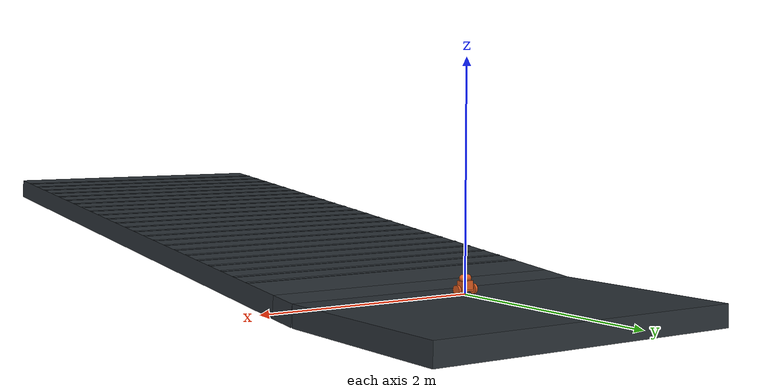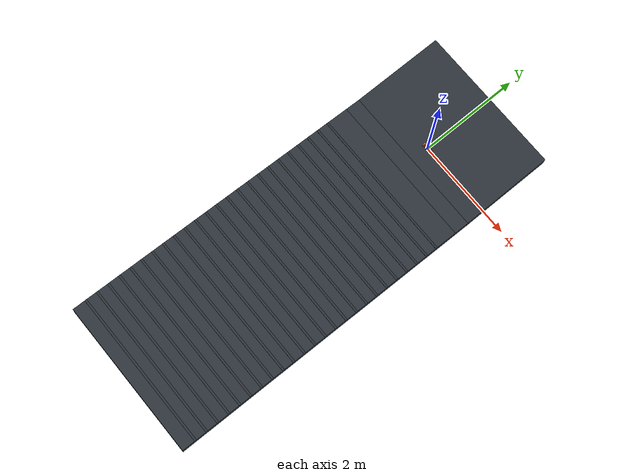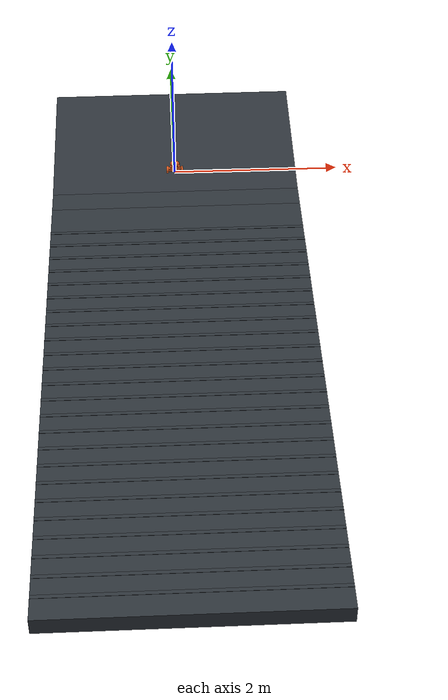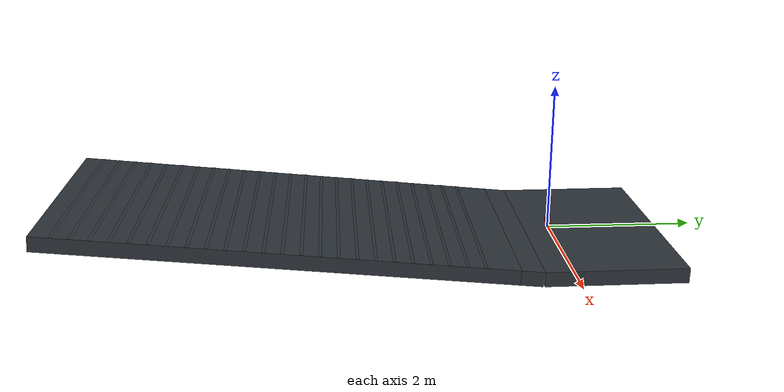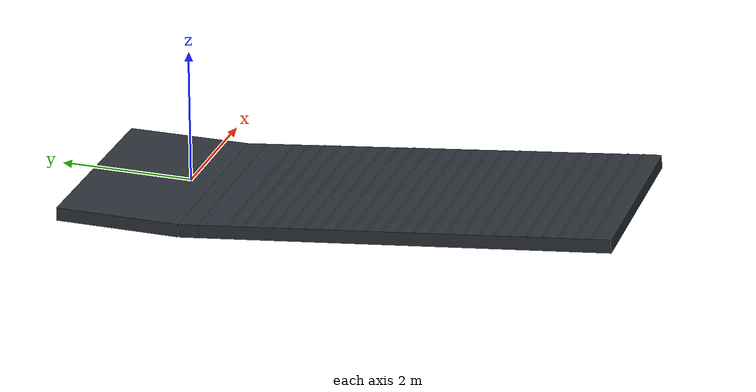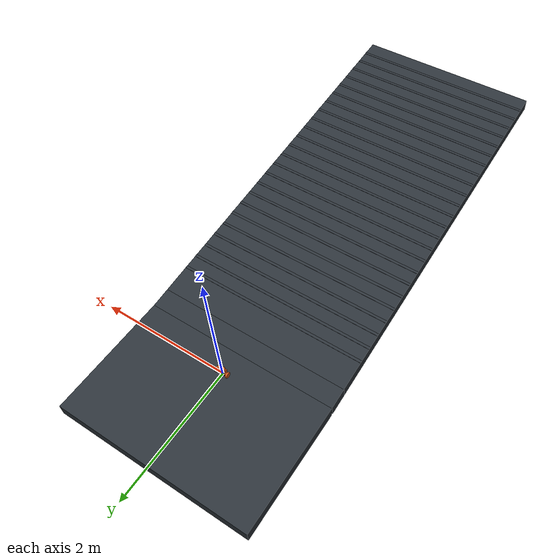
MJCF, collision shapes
<mujoco model="Stage4B rbase_ep_056_test_p06p0">
  <compiler angle="radian" meshdir="../../../../assets/upstream_local" />
  <option timestep="0.001" integrator="implicitfast" gravity="0 0 -9.81" />
  <statistic center="0 0 0.05" extent="0.28" />
  <default>
    <default class="visual">
      <geom contype="0" conaffinity="0" group="2" />
    </default>
    <default class="collision">
      <geom group="3" rgba="0.85 0.35 0.12 0.25" solref="0.005 1" solimp="0.9 0.95 0.001" />
    </default>
  </default>
  <asset>
    <texture name="ground_tex" type="2d" builtin="checker" rgb1="0.22 0.25 0.28" rgb2="0.12 0.14 0.16" width="256" height="256" />
    <material name="ground_mat" texture="ground_tex" texrepeat="4 4" reflectance="0.15" />
    <mesh name="main_frame_mesh" file="main_frame.stl" scale="0.001 0.001 0.001" />
    <mesh name="wheel_base_mesh" file="wheel_base.stl" scale="0.001 0.001 0.001" />
    <mesh name="cover_mesh" file="cover.stl" scale="0.001 0.001 0.001" />
    <mesh name="motor_left_mesh" file="motor_left.stl" scale="0.001 0.001 0.001" />
    <mesh name="motor_right_mesh" file="motor_right.stl" scale="0.001 0.001 0.001" />
    <mesh name="mc33926_mesh" file="mc33926.stl" scale="0.001 0.001 0.001" />
    <mesh name="wheel_mesh" file="wheel.stl" scale="0.001 0.001 0.001" />
    <mesh name="adapter_left_mesh" file="adapter_left.stl" scale="0.001 0.001 0.001" />
    <mesh name="adapter_right_mesh" file="adapter_right.stl" scale="0.001 0.001 0.001" />
  </asset>
  <worldbody>
    <light pos="0 -0.5 0.8" dir="0 0.6 -1" diffuse="0.8 0.8 0.8" />
    <geom name="terrain_flat" type="box" pos="0 0.575 -0.1" size="1.5 0.925 0.1" material="ground_mat" friction="0.45 0.005 0.0001" condim="3" />
    <geom name="terrain_transition" type="box" pos="0 -0.509631130632 -0.0837729200467" euler="-0.10471975512 0 0" size="1.5 0.15 0.1" material="ground_mat" friction="0.45 0.005 0.0001" condim="3" />
    <geom name="terrain_constant_grade" type="box" pos="0 -3.64237510104 0.245491739246" euler="-0.10471975512 0 0" size="1.5 3 0.1" material="ground_mat" friction="0.45 0.005 0.0001" condim="3" />
    <geom name="terrain_rough_00" type="box" pos="0 -1.09570849672 0.0801367607676" euler="-0.10471975512 0 0" size="1.5 0.02 0.00175" material="ground_mat" friction="0.45 0.005 0.0001" condim="3" />
    <geom name="terrain_rough_01" type="box" pos="0 -1.32444853265 0.104178307319" euler="-0.10471975512 0 0" size="1.5 0.02 0.00175" material="ground_mat" friction="0.45 0.005 0.0001" condim="3" />
    <geom name="terrain_rough_02" type="box" pos="0 -1.55318856858 0.128219853871" euler="-0.10471975512 0 0" size="1.5 0.02 0.00175" material="ground_mat" friction="0.45 0.005 0.0001" condim="3" />
    <geom name="terrain_rough_03" type="box" pos="0 -1.78192860452 0.152261400422" euler="-0.10471975512 0 0" size="1.5 0.02 0.00175" material="ground_mat" friction="0.45 0.005 0.0001" condim="3" />
    <geom name="terrain_rough_04" type="box" pos="0 -2.01066864045 0.176302946974" euler="-0.10471975512 0 0" size="1.5 0.02 0.00175" material="ground_mat" friction="0.45 0.005 0.0001" condim="3" />
    <geom name="terrain_rough_05" type="box" pos="0 -2.23940867639 0.200344493525" euler="-0.10471975512 0 0" size="1.5 0.02 0.00175" material="ground_mat" friction="0.45 0.005 0.0001" condim="3" />
    <geom name="terrain_rough_06" type="box" pos="0 -2.46814871232 0.224386040077" euler="-0.10471975512 0 0" size="1.5 0.02 0.00175" material="ground_mat" friction="0.45 0.005 0.0001" condim="3" />
    <geom name="terrain_rough_07" type="box" pos="0 -2.69688874826 0.248427586629" euler="-0.10471975512 0 0" size="1.5 0.02 0.00175" material="ground_mat" friction="0.45 0.005 0.0001" condim="3" />
    <geom name="terrain_rough_08" type="box" pos="0 -2.92562878419 0.27246913318" euler="-0.10471975512 0 0" size="1.5 0.02 0.00175" material="ground_mat" friction="0.45 0.005 0.0001" condim="3" />
    <geom name="terrain_rough_09" type="box" pos="0 -3.15436882013 0.296510679732" euler="-0.10471975512 0 0" size="1.5 0.02 0.00175" material="ground_mat" friction="0.45 0.005 0.0001" condim="3" />
    <geom name="terrain_rough_10" type="box" pos="0 -3.38310885606 0.320552226283" euler="-0.10471975512 0 0" size="1.5 0.02 0.00175" material="ground_mat" friction="0.45 0.005 0.0001" condim="3" />
    <geom name="terrain_rough_11" type="box" pos="0 -3.611848892 0.344593772835" euler="-0.10471975512 0 0" size="1.5 0.02 0.00175" material="ground_mat" friction="0.45 0.005 0.0001" condim="3" />
    <geom name="terrain_rough_12" type="box" pos="0 -3.84058892793 0.368635319386" euler="-0.10471975512 0 0" size="1.5 0.02 0.00175" material="ground_mat" friction="0.45 0.005 0.0001" condim="3" />
    <geom name="terrain_rough_13" type="box" pos="0 -4.06932896387 0.392676865938" euler="-0.10471975512 0 0" size="1.5 0.02 0.00175" material="ground_mat" friction="0.45 0.005 0.0001" condim="3" />
    <geom name="terrain_rough_14" type="box" pos="0 -4.2980689998 0.416718412489" euler="-0.10471975512 0 0" size="1.5 0.02 0.00175" material="ground_mat" friction="0.45 0.005 0.0001" condim="3" />
    <geom name="terrain_rough_15" type="box" pos="0 -4.52680903574 0.440759959041" euler="-0.10471975512 0 0" size="1.5 0.02 0.00175" material="ground_mat" friction="0.45 0.005 0.0001" condim="3" />
    <geom name="terrain_rough_16" type="box" pos="0 -4.75554907167 0.464801505593" euler="-0.10471975512 0 0" size="1.5 0.02 0.00175" material="ground_mat" friction="0.45 0.005 0.0001" condim="3" />
    <geom name="terrain_rough_17" type="box" pos="0 -4.98428910761 0.488843052144" euler="-0.10471975512 0 0" size="1.5 0.02 0.00175" material="ground_mat" friction="0.45 0.005 0.0001" condim="3" />
    <geom name="terrain_rough_18" type="box" pos="0 -5.21302914354 0.512884598696" euler="-0.10471975512 0 0" size="1.5 0.02 0.00175" material="ground_mat" friction="0.45 0.005 0.0001" condim="3" />
    <geom name="terrain_rough_19" type="box" pos="0 -5.44176917947 0.536926145247" euler="-0.10471975512 0 0" size="1.5 0.02 0.00175" material="ground_mat" friction="0.45 0.005 0.0001" condim="3" />
    <geom name="terrain_rough_20" type="box" pos="0 -5.67050921541 0.560967691799" euler="-0.10471975512 0 0" size="1.5 0.02 0.00175" material="ground_mat" friction="0.45 0.005 0.0001" condim="3" />
    <geom name="terrain_rough_21" type="box" pos="0 -5.89924925134 0.58500923835" euler="-0.10471975512 0 0" size="1.5 0.02 0.00175" material="ground_mat" friction="0.45 0.005 0.0001" condim="3" />
    <geom name="terrain_rough_22" type="box" pos="0 -6.12798928728 0.609050784902" euler="-0.10471975512 0 0" size="1.5 0.02 0.00175" material="ground_mat" friction="0.45 0.005 0.0001" condim="3" />
    <geom name="terrain_rough_23" type="box" pos="0 -6.35672932321 0.633092331454" euler="-0.10471975512 0 0" size="1.5 0.02 0.00175" material="ground_mat" friction="0.45 0.005 0.0001" condim="3" />
    <body name="chassis" pos="0 0 0.043">
      <freejoint name="root" />
      <inertial pos="0.0001592717873 -0.001394466535 0.03368627387" mass="0.8173706489" fullinertia="0.0009508052638 0.001636345835 0.0009938057434 -1.163464906e-07 -4.840496598e-06 3.454944565e-05" />
      <geom name="main_frame_visual" class="visual" type="mesh" mesh="main_frame_mesh" rgba="0.12 0.42 0.72 1" />
      <geom name="wheel_base_visual" class="visual" type="mesh" mesh="wheel_base_mesh" rgba="0.95 0.50 0.10 1" />
      <geom name="cover_visual" class="visual" type="mesh" mesh="cover_mesh" rgba="0.18 0.72 0.32 0.72" />
      <geom name="motor_left_visual" class="visual" type="mesh" mesh="motor_left_mesh" rgba="0.45 0.47 0.50 1" />
      <geom name="motor_right_visual" class="visual" type="mesh" mesh="motor_right_mesh" rgba="0.45 0.47 0.50 1" />
      <geom name="mc33926_visual" class="visual" type="mesh" mesh="mc33926_mesh" rgba="0.08 0.36 0.18 1" />
      <geom name="battery_1_visual" class="visual" type="box" pos="0 -0.012 0.038" size="0.035 0.007 0.025" rgba="0.15 0.25 0.75 1" />
      <geom name="battery_2_visual" class="visual" type="box" pos="0 0.012 0.038" size="0.035 0.007 0.025" rgba="0.15 0.25 0.75 1" />
      <geom name="electronics_lump_visual" class="visual" type="box" pos="0 -0.024 0.067" size="0.035 0.006 0.0425" rgba="0.10 0.42 0.20 0.65" />
      <geom name="wheel_base_collision" class="collision" type="box" pos="0 0.0005 0.0042" size="0.074 0.0201 0.0198" />
      <geom name="lower_chassis_collision" class="collision" type="box" pos="0.001 -0.0015 0.038" size="0.0595 0.0325 0.038" />
      <geom name="upper_chassis_collision" class="collision" type="capsule" fromto="-0.024 -0.0015 0.096 0.026 -0.0015 0.096" size="0.033" />
      <site name="imu_site" type="box" pos="0 0 0.020" quat="1 0 0 0" size="0.004 0.003 0.001" rgba="1 0.15 0.05 1" />
      <body name="left_wheel" pos="-0.0885 0 0">
        <joint name="left_wheel_hinge" type="hinge" axis="1 0 0" damping="0.002" frictionloss="0.002" />
        <inertial pos="0.001407549168 -2.310217342e-08 4.024972882e-05" mass="0.1051" fullinertia="8.559060347e-05 4.760138372e-05 4.763051958e-05 2.677568832e-11 -3.525425309e-08 -1.463149106e-11" />
        <geom name="left_wheel_visual" class="visual" type="mesh" mesh="wheel_mesh" rgba="0.04 0.05 0.06 1" />
        <geom name="left_adapter_visual" class="visual" type="mesh" mesh="adapter_left_mesh" rgba="0.12 0.48 0.82 1" />
        <geom name="left_wheel_collision" class="collision" type="cylinder" size="0.042 0.012" quat="0.7071067812 0 0.7071067812 0" friction="0.45 0.005 0.0001" />
      </body>
      <body name="right_wheel" pos="0.0885 0 0">
        <joint name="right_wheel_hinge" type="hinge" axis="1 0 0" damping="0.002" frictionloss="0.002" />
        <inertial pos="-0.001407437868 -2.310217342e-08 -4.019113045e-05" mass="0.1051" fullinertia="8.559060397e-05 4.760141714e-05 4.763055251e-05 -2.601653908e-11 -3.526339188e-08 1.57007511e-11" />
        <geom name="right_wheel_visual" class="visual" type="mesh" mesh="wheel_mesh" rgba="0.04 0.05 0.06 1" />
        <geom name="right_adapter_visual" class="visual" type="mesh" mesh="adapter_right_mesh" rgba="0.12 0.48 0.82 1" />
        <geom name="right_wheel_collision" class="collision" type="cylinder" size="0.042 0.012" quat="0.7071067812 0 0.7071067812 0" friction="0.45 0.005 0.0001" />
      </body>
    </body>
  </worldbody>
  <actuator>
    <motor name="left_wheel_torque" joint="left_wheel_hinge" gear="1" ctrllimited="true" ctrlrange="-0.63 0.63" forcelimited="true" forcerange="-0.63 0.63" />
    <motor name="right_wheel_torque" joint="right_wheel_hinge" gear="1" ctrllimited="true" ctrlrange="-0.63 0.63" forcelimited="true" forcerange="-0.63 0.63" />
  </actuator>
  <sensor>
    <accelerometer name="imu_accelerometer" site="imu_site" />
    <gyro name="imu_gyro" site="imu_site" />
    <jointpos name="left_wheel_angle" joint="left_wheel_hinge" />
    <jointpos name="right_wheel_angle" joint="right_wheel_hinge" />
  </sensor>
  <keyframe>
    <key name="upright" qpos="0 0 0.043 1 0 0 0 0 0" />
  </keyframe>
</mujoco>
